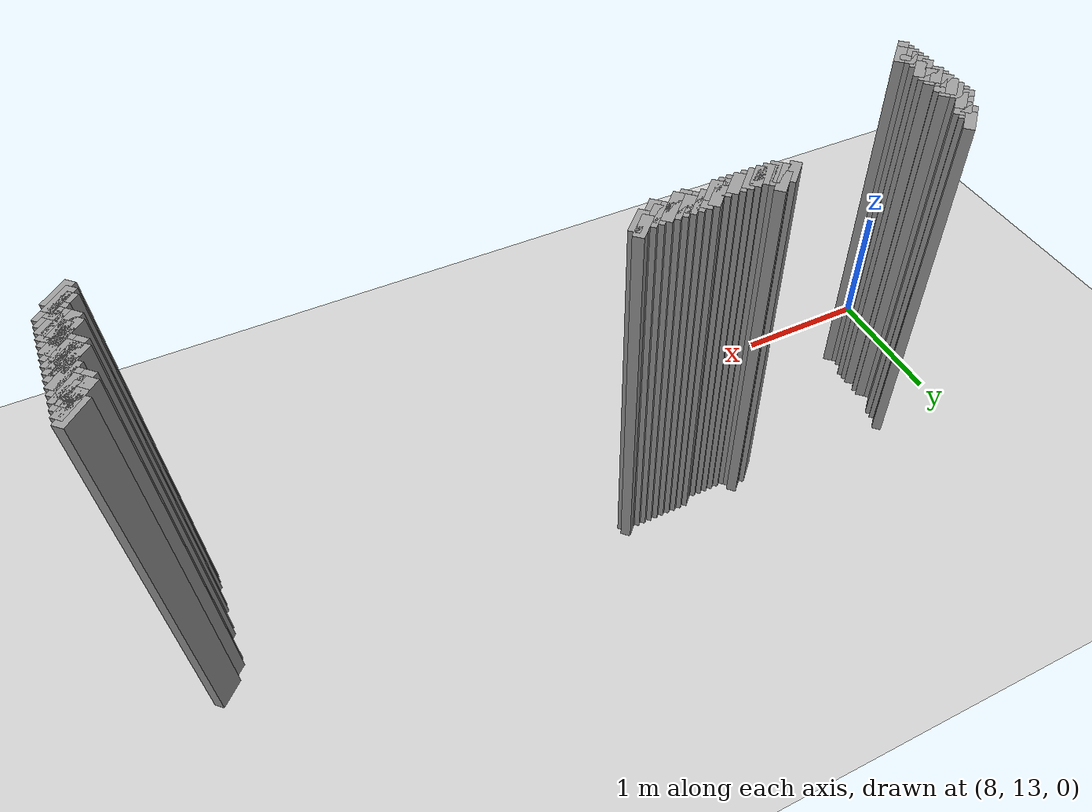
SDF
<sdf version="1.5">
 <world name="default">
  <include><uri>model://ground_plane</uri></include>
  <include><uri>model://sun</uri></include>
  <model name="grey_wall_701">
   <static>1</static>
   <link name="link">
    <pose>8.55 14.15  1.4 0 0 -0.785398163397</pose>
    <collision name="collision"><geometry><box><size>0.0707106781187 .2  2.8</size></box></geometry></collision>
    <visual name="visual">
     <cast_shadows>0</cast_shadows>
     <geometry><box><size>0.0707106781187 .2  2.8</size></box></geometry>
     <material>
      <script>
       <uri>model://grey_wall/materials/scripts</uri>
       <uri>model://grey_wall/materials/textures</uri>
       <name>vrc/grey_wall</name>
      </script>
     </material>
    </visual>
   </link>
  </model>
  <model name="grey_wall_702">
   <static>1</static>
   <link name="link">
    <pose>9.9 14.15  1.4 0 0 -0.785398163397</pose>
    <collision name="collision"><geometry><box><size>0.0707106781187 .2  2.8</size></box></geometry></collision>
    <visual name="visual">
     <cast_shadows>0</cast_shadows>
     <geometry><box><size>0.0707106781187 .2  2.8</size></box></geometry>
     <material>
      <script>
       <uri>model://grey_wall/materials/scripts</uri>
       <uri>model://grey_wall/materials/textures</uri>
       <name>vrc/grey_wall</name>
      </script>
     </material>
    </visual>
   </link>
  </model>
  <model name="grey_wall_703">
   <static>1</static>
   <link name="link">
    <pose>10.8 14.15  1.4 0 0 -0.785398163397</pose>
    <collision name="collision"><geometry><box><size>0.0707106781187 .2  2.8</size></box></geometry></collision>
    <visual name="visual">
     <cast_shadows>0</cast_shadows>
     <geometry><box><size>0.0707106781187 .2  2.8</size></box></geometry>
     <material>
      <script>
       <uri>model://grey_wall/materials/scripts</uri>
       <uri>model://grey_wall/materials/textures</uri>
       <name>vrc/grey_wall</name>
      </script>
     </material>
    </visual>
   </link>
  </model>
  <model name="grey_wall_704">
   <static>1</static>
   <link name="link">
    <pose>13.75 14.15  1.4 0 0 -0.785398163397</pose>
    <collision name="collision"><geometry><box><size>0.0707106781187 .2  2.8</size></box></geometry></collision>
    <visual name="visual">
     <cast_shadows>0</cast_shadows>
     <geometry><box><size>0.0707106781187 .2  2.8</size></box></geometry>
     <material>
      <script>
       <uri>model://grey_wall/materials/scripts</uri>
       <uri>model://grey_wall/materials/textures</uri>
       <name>vrc/grey_wall</name>
      </script>
     </material>
    </visual>
   </link>
  </model>
  <model name="grey_wall_705">
   <static>1</static>
   <link name="link">
    <pose>8.5 14.1  1.4 0 0 -0.785398163397</pose>
    <collision name="collision"><geometry><box><size>0.0707106781187 .2  2.8</size></box></geometry></collision>
    <visual name="visual">
     <cast_shadows>0</cast_shadows>
     <geometry><box><size>0.0707106781187 .2  2.8</size></box></geometry>
     <material>
      <script>
       <uri>model://grey_wall/materials/scripts</uri>
       <uri>model://grey_wall/materials/textures</uri>
       <name>vrc/grey_wall</name>
      </script>
     </material>
    </visual>
   </link>
  </model>
  <model name="grey_wall_706">
   <static>1</static>
   <link name="link">
    <pose>9.8 14.1  1.4 0 0 -0.785398163397</pose>
    <collision name="collision"><geometry><box><size>0.0707106781187 .2  2.8</size></box></geometry></collision>
    <visual name="visual">
     <cast_shadows>0</cast_shadows>
     <geometry><box><size>0.0707106781187 .2  2.8</size></box></geometry>
     <material>
      <script>
       <uri>model://grey_wall/materials/scripts</uri>
       <uri>model://grey_wall/materials/textures</uri>
       <name>vrc/grey_wall</name>
      </script>
     </material>
    </visual>
   </link>
  </model>
  <model name="grey_wall_707">
   <static>1</static>
   <link name="link">
    <pose>9.85 14.1  1.4 0 0 -0.785398163397</pose>
    <collision name="collision"><geometry><box><size>0.0707106781187 .2  2.8</size></box></geometry></collision>
    <visual name="visual">
     <cast_shadows>0</cast_shadows>
     <geometry><box><size>0.0707106781187 .2  2.8</size></box></geometry>
     <material>
      <script>
       <uri>model://grey_wall/materials/scripts</uri>
       <uri>model://grey_wall/materials/textures</uri>
       <name>vrc/grey_wall</name>
      </script>
     </material>
    </visual>
   </link>
  </model>
  <model name="grey_wall_708">
   <static>1</static>
   <link name="link">
    <pose>9.9 14.1  1.4 0 0 -0.785398163397</pose>
    <collision name="collision"><geometry><box><size>0.0707106781187 .2  2.8</size></box></geometry></collision>
    <visual name="visual">
     <cast_shadows>0</cast_shadows>
     <geometry><box><size>0.0707106781187 .2  2.8</size></box></geometry>
     <material>
      <script>
       <uri>model://grey_wall/materials/scripts</uri>
       <uri>model://grey_wall/materials/textures</uri>
       <name>vrc/grey_wall</name>
      </script>
     </material>
    </visual>
   </link>
  </model>
  <model name="grey_wall_709">
   <static>1</static>
   <link name="link">
    <pose>10.3 14.1  1.4 0 0 -0.785398163397</pose>
    <collision name="collision"><geometry><box><size>0.0707106781187 .2  2.8</size></box></geometry></collision>
    <visual name="visual">
     <cast_shadows>0</cast_shadows>
     <geometry><box><size>0.0707106781187 .2  2.8</size></box></geometry>
     <material>
      <script>
       <uri>model://grey_wall/materials/scripts</uri>
       <uri>model://grey_wall/materials/textures</uri>
       <name>vrc/grey_wall</name>
      </script>
     </material>
    </visual>
   </link>
  </model>
  <model name="grey_wall_710">
   <static>1</static>
   <link name="link">
    <pose>10.35 14.1  1.4 0 0 -0.785398163397</pose>
    <collision name="collision"><geometry><box><size>0.0707106781187 .2  2.8</size></box></geometry></collision>
    <visual name="visual">
     <cast_shadows>0</cast_shadows>
     <geometry><box><size>0.0707106781187 .2  2.8</size></box></geometry>
     <material>
      <script>
       <uri>model://grey_wall/materials/scripts</uri>
       <uri>model://grey_wall/materials/textures</uri>
       <name>vrc/grey_wall</name>
      </script>
     </material>
    </visual>
   </link>
  </model>
  <model name="grey_wall_711">
   <static>1</static>
   <link name="link">
    <pose>10.4 14.1  1.4 0 0 -0.785398163397</pose>
    <collision name="collision"><geometry><box><size>0.0707106781187 .2  2.8</size></box></geometry></collision>
    <visual name="visual">
     <cast_shadows>0</cast_shadows>
     <geometry><box><size>0.0707106781187 .2  2.8</size></box></geometry>
     <material>
      <script>
       <uri>model://grey_wall/materials/scripts</uri>
       <uri>model://grey_wall/materials/textures</uri>
       <name>vrc/grey_wall</name>
      </script>
     </material>
    </visual>
   </link>
  </model>
  <model name="grey_wall_712">
   <static>1</static>
   <link name="link">
    <pose>10.45 14.1  1.4 0 0 -0.785398163397</pose>
    <collision name="collision"><geometry><box><size>0.0707106781187 .2  2.8</size></box></geometry></collision>
    <visual name="visual">
     <cast_shadows>0</cast_shadows>
     <geometry><box><size>0.0707106781187 .2  2.8</size></box></geometry>
     <material>
      <script>
       <uri>model://grey_wall/materials/scripts</uri>
       <uri>model://grey_wall/materials/textures</uri>
       <name>vrc/grey_wall</name>
      </script>
     </material>
    </visual>
   </link>
  </model>
  <model name="grey_wall_713">
   <static>1</static>
   <link name="link">
    <pose>10.5 14.1  1.4 0 0 -0.785398163397</pose>
    <collision name="collision"><geometry><box><size>0.0707106781187 .2  2.8</size></box></geometry></collision>
    <visual name="visual">
     <cast_shadows>0</cast_shadows>
     <geometry><box><size>0.0707106781187 .2  2.8</size></box></geometry>
     <material>
      <script>
       <uri>model://grey_wall/materials/scripts</uri>
       <uri>model://grey_wall/materials/textures</uri>
       <name>vrc/grey_wall</name>
      </script>
     </material>
    </visual>
   </link>
  </model>
  <model name="grey_wall_714">
   <static>1</static>
   <link name="link">
    <pose>10.55 14.1  1.4 0 0 -0.785398163397</pose>
    <collision name="collision"><geometry><box><size>0.0707106781187 .2  2.8</size></box></geometry></collision>
    <visual name="visual">
     <cast_shadows>0</cast_shadows>
     <geometry><box><size>0.0707106781187 .2  2.8</size></box></geometry>
     <material>
      <script>
       <uri>model://grey_wall/materials/scripts</uri>
       <uri>model://grey_wall/materials/textures</uri>
       <name>vrc/grey_wall</name>
      </script>
     </material>
    </visual>
   </link>
  </model>
  <model name="grey_wall_715">
   <static>1</static>
   <link name="link">
    <pose>10.6 14.1  1.4 0 0 -0.785398163397</pose>
    <collision name="collision"><geometry><box><size>0.0707106781187 .2  2.8</size></box></geometry></collision>
    <visual name="visual">
     <cast_shadows>0</cast_shadows>
     <geometry><box><size>0.0707106781187 .2  2.8</size></box></geometry>
     <material>
      <script>
       <uri>model://grey_wall/materials/scripts</uri>
       <uri>model://grey_wall/materials/textures</uri>
       <name>vrc/grey_wall</name>
      </script>
     </material>
    </visual>
   </link>
  </model>
  <model name="grey_wall_716">
   <static>1</static>
   <link name="link">
    <pose>10.65 14.1  1.4 0 0 -0.785398163397</pose>
    <collision name="collision"><geometry><box><size>0.0707106781187 .2  2.8</size></box></geometry></collision>
    <visual name="visual">
     <cast_shadows>0</cast_shadows>
     <geometry><box><size>0.0707106781187 .2  2.8</size></box></geometry>
     <material>
      <script>
       <uri>model://grey_wall/materials/scripts</uri>
       <uri>model://grey_wall/materials/textures</uri>
       <name>vrc/grey_wall</name>
      </script>
     </material>
    </visual>
   </link>
  </model>
  <model name="grey_wall_717">
   <static>1</static>
   <link name="link">
    <pose>10.7 14.1  1.4 0 0 -0.785398163397</pose>
    <collision name="collision"><geometry><box><size>0.0707106781187 .2  2.8</size></box></geometry></collision>
    <visual name="visual">
     <cast_shadows>0</cast_shadows>
     <geometry><box><size>0.0707106781187 .2  2.8</size></box></geometry>
     <material>
      <script>
       <uri>model://grey_wall/materials/scripts</uri>
       <uri>model://grey_wall/materials/textures</uri>
       <name>vrc/grey_wall</name>
      </script>
     </material>
    </visual>
   </link>
  </model>
  <model name="grey_wall_718">
   <static>1</static>
   <link name="link">
    <pose>10.75 14.1  1.4 0 0 -0.785398163397</pose>
    <collision name="collision"><geometry><box><size>0.0707106781187 .2  2.8</size></box></geometry></collision>
    <visual name="visual">
     <cast_shadows>0</cast_shadows>
     <geometry><box><size>0.0707106781187 .2  2.8</size></box></geometry>
     <material>
      <script>
       <uri>model://grey_wall/materials/scripts</uri>
       <uri>model://grey_wall/materials/textures</uri>
       <name>vrc/grey_wall</name>
      </script>
     </material>
    </visual>
   </link>
  </model>
  <model name="grey_wall_719">
   <static>1</static>
   <link name="link">
    <pose>10.8 14.1  1.4 0 0 -0.785398163397</pose>
    <collision name="collision"><geometry><box><size>0.0707106781187 .2  2.8</size></box></geometry></collision>
    <visual name="visual">
     <cast_shadows>0</cast_shadows>
     <geometry><box><size>0.0707106781187 .2  2.8</size></box></geometry>
     <material>
      <script>
       <uri>model://grey_wall/materials/scripts</uri>
       <uri>model://grey_wall/materials/textures</uri>
       <name>vrc/grey_wall</name>
      </script>
     </material>
    </visual>
   </link>
  </model>
  <model name="grey_wall_720">
   <static>1</static>
   <link name="link">
    <pose>13.75 14.1  1.4 0 0 -0.785398163397</pose>
    <collision name="collision"><geometry><box><size>0.0707106781187 .2  2.8</size></box></geometry></collision>
    <visual name="visual">
     <cast_shadows>0</cast_shadows>
     <geometry><box><size>0.0707106781187 .2  2.8</size></box></geometry>
     <material>
      <script>
       <uri>model://grey_wall/materials/scripts</uri>
       <uri>model://grey_wall/materials/textures</uri>
       <name>vrc/grey_wall</name>
      </script>
     </material>
    </visual>
   </link>
  </model>
  <model name="grey_wall_721">
   <static>1</static>
   <link name="link">
    <pose>8.5 14.05  1.4 0 0 -0.785398163397</pose>
    <collision name="collision"><geometry><box><size>0.0707106781187 .2  2.8</size></box></geometry></collision>
    <visual name="visual">
     <cast_shadows>0</cast_shadows>
     <geometry><box><size>0.0707106781187 .2  2.8</size></box></geometry>
     <material>
      <script>
       <uri>model://grey_wall/materials/scripts</uri>
       <uri>model://grey_wall/materials/textures</uri>
       <name>vrc/grey_wall</name>
      </script>
     </material>
    </visual>
   </link>
  </model>
  <model name="grey_wall_722">
   <static>1</static>
   <link name="link">
    <pose>9.9 14.05  1.4 0 0 -0.785398163397</pose>
    <collision name="collision"><geometry><box><size>0.0707106781187 .2  2.8</size></box></geometry></collision>
    <visual name="visual">
     <cast_shadows>0</cast_shadows>
     <geometry><box><size>0.0707106781187 .2  2.8</size></box></geometry>
     <material>
      <script>
       <uri>model://grey_wall/materials/scripts</uri>
       <uri>model://grey_wall/materials/textures</uri>
       <name>vrc/grey_wall</name>
      </script>
     </material>
    </visual>
   </link>
  </model>
  <model name="grey_wall_723">
   <static>1</static>
   <link name="link">
    <pose>9.95 14.05  1.4 0 0 -0.785398163397</pose>
    <collision name="collision"><geometry><box><size>0.0707106781187 .2  2.8</size></box></geometry></collision>
    <visual name="visual">
     <cast_shadows>0</cast_shadows>
     <geometry><box><size>0.0707106781187 .2  2.8</size></box></geometry>
     <material>
      <script>
       <uri>model://grey_wall/materials/scripts</uri>
       <uri>model://grey_wall/materials/textures</uri>
       <name>vrc/grey_wall</name>
      </script>
     </material>
    </visual>
   </link>
  </model>
  <model name="grey_wall_724">
   <static>1</static>
   <link name="link">
    <pose>10.0 14.05  1.4 0 0 -0.785398163397</pose>
    <collision name="collision"><geometry><box><size>0.0707106781187 .2  2.8</size></box></geometry></collision>
    <visual name="visual">
     <cast_shadows>0</cast_shadows>
     <geometry><box><size>0.0707106781187 .2  2.8</size></box></geometry>
     <material>
      <script>
       <uri>model://grey_wall/materials/scripts</uri>
       <uri>model://grey_wall/materials/textures</uri>
       <name>vrc/grey_wall</name>
      </script>
     </material>
    </visual>
   </link>
  </model>
  <model name="grey_wall_725">
   <static>1</static>
   <link name="link">
    <pose>10.05 14.05  1.4 0 0 -0.785398163397</pose>
    <collision name="collision"><geometry><box><size>0.0707106781187 .2  2.8</size></box></geometry></collision>
    <visual name="visual">
     <cast_shadows>0</cast_shadows>
     <geometry><box><size>0.0707106781187 .2  2.8</size></box></geometry>
     <material>
      <script>
       <uri>model://grey_wall/materials/scripts</uri>
       <uri>model://grey_wall/materials/textures</uri>
       <name>vrc/grey_wall</name>
      </script>
     </material>
    </visual>
   </link>
  </model>
  <model name="grey_wall_726">
   <static>1</static>
   <link name="link">
    <pose>10.1 14.05  1.4 0 0 -0.785398163397</pose>
    <collision name="collision"><geometry><box><size>0.0707106781187 .2  2.8</size></box></geometry></collision>
    <visual name="visual">
     <cast_shadows>0</cast_shadows>
     <geometry><box><size>0.0707106781187 .2  2.8</size></box></geometry>
     <material>
      <script>
       <uri>model://grey_wall/materials/scripts</uri>
       <uri>model://grey_wall/materials/textures</uri>
       <name>vrc/grey_wall</name>
      </script>
     </material>
    </visual>
   </link>
  </model>
  <model name="grey_wall_727">
   <static>1</static>
   <link name="link">
    <pose>10.15 14.05  1.4 0 0 -0.785398163397</pose>
    <collision name="collision"><geometry><box><size>0.0707106781187 .2  2.8</size></box></geometry></collision>
    <visual name="visual">
     <cast_shadows>0</cast_shadows>
     <geometry><box><size>0.0707106781187 .2  2.8</size></box></geometry>
     <material>
      <script>
       <uri>model://grey_wall/materials/scripts</uri>
       <uri>model://grey_wall/materials/textures</uri>
       <name>vrc/grey_wall</name>
      </script>
     </material>
    </visual>
   </link>
  </model>
  <model name="grey_wall_728">
   <static>1</static>
   <link name="link">
    <pose>10.2 14.05  1.4 0 0 -0.785398163397</pose>
    <collision name="collision"><geometry><box><size>0.0707106781187 .2  2.8</size></box></geometry></collision>
    <visual name="visual">
     <cast_shadows>0</cast_shadows>
     <geometry><box><size>0.0707106781187 .2  2.8</size></box></geometry>
     <material>
      <script>
       <uri>model://grey_wall/materials/scripts</uri>
       <uri>model://grey_wall/materials/textures</uri>
       <name>vrc/grey_wall</name>
      </script>
     </material>
    </visual>
   </link>
  </model>
  <model name="grey_wall_729">
   <static>1</static>
   <link name="link">
    <pose>10.25 14.05  1.4 0 0 -0.785398163397</pose>
    <collision name="collision"><geometry><box><size>0.0707106781187 .2  2.8</size></box></geometry></collision>
    <visual name="visual">
     <cast_shadows>0</cast_shadows>
     <geometry><box><size>0.0707106781187 .2  2.8</size></box></geometry>
     <material>
      <script>
       <uri>model://grey_wall/materials/scripts</uri>
       <uri>model://grey_wall/materials/textures</uri>
       <name>vrc/grey_wall</name>
      </script>
     </material>
    </visual>
   </link>
  </model>
  <model name="grey_wall_730">
   <static>1</static>
   <link name="link">
    <pose>10.3 14.05  1.4 0 0 -0.785398163397</pose>
    <collision name="collision"><geometry><box><size>0.0707106781187 .2  2.8</size></box></geometry></collision>
    <visual name="visual">
     <cast_shadows>0</cast_shadows>
     <geometry><box><size>0.0707106781187 .2  2.8</size></box></geometry>
     <material>
      <script>
       <uri>model://grey_wall/materials/scripts</uri>
       <uri>model://grey_wall/materials/textures</uri>
       <name>vrc/grey_wall</name>
      </script>
     </material>
    </visual>
   </link>
  </model>
  <model name="grey_wall_731">
   <static>1</static>
   <link name="link">
    <pose>10.5 14.05  1.4 0 0 -0.785398163397</pose>
    <collision name="collision"><geometry><box><size>0.0707106781187 .2  2.8</size></box></geometry></collision>
    <visual name="visual">
     <cast_shadows>0</cast_shadows>
     <geometry><box><size>0.0707106781187 .2  2.8</size></box></geometry>
     <material>
      <script>
       <uri>model://grey_wall/materials/scripts</uri>
       <uri>model://grey_wall/materials/textures</uri>
       <name>vrc/grey_wall</name>
      </script>
     </material>
    </visual>
   </link>
  </model>
  <model name="grey_wall_732">
   <static>1</static>
   <link name="link">
    <pose>10.55 14.05  1.4 0 0 -0.785398163397</pose>
    <collision name="collision"><geometry><box><size>0.0707106781187 .2  2.8</size></box></geometry></collision>
    <visual name="visual">
     <cast_shadows>0</cast_shadows>
     <geometry><box><size>0.0707106781187 .2  2.8</size></box></geometry>
     <material>
      <script>
       <uri>model://grey_wall/materials/scripts</uri>
       <uri>model://grey_wall/materials/textures</uri>
       <name>vrc/grey_wall</name>
      </script>
     </material>
    </visual>
   </link>
  </model>
  <model name="grey_wall_733">
   <static>1</static>
   <link name="link">
    <pose>10.7 14.05  1.4 0 0 -0.785398163397</pose>
    <collision name="collision"><geometry><box><size>0.0707106781187 .2  2.8</size></box></geometry></collision>
    <visual name="visual">
     <cast_shadows>0</cast_shadows>
     <geometry><box><size>0.0707106781187 .2  2.8</size></box></geometry>
     <material>
      <script>
       <uri>model://grey_wall/materials/scripts</uri>
       <uri>model://grey_wall/materials/textures</uri>
       <name>vrc/grey_wall</name>
      </script>
     </material>
    </visual>
   </link>
  </model>
  <model name="grey_wall_734">
   <static>1</static>
   <link name="link">
    <pose>13.7 14.05  1.4 0 0 -0.785398163397</pose>
    <collision name="collision"><geometry><box><size>0.0707106781187 .2  2.8</size></box></geometry></collision>
    <visual name="visual">
     <cast_shadows>0</cast_shadows>
     <geometry><box><size>0.0707106781187 .2  2.8</size></box></geometry>
     <material>
      <script>
       <uri>model://grey_wall/materials/scripts</uri>
       <uri>model://grey_wall/materials/textures</uri>
       <name>vrc/grey_wall</name>
      </script>
     </material>
    </visual>
   </link>
  </model>
  <model name="grey_wall_735">
   <static>1</static>
   <link name="link">
    <pose>13.75 14.05  1.4 0 0 -0.785398163397</pose>
    <collision name="collision"><geometry><box><size>0.0707106781187 .2  2.8</size></box></geometry></collision>
    <visual name="visual">
     <cast_shadows>0</cast_shadows>
     <geometry><box><size>0.0707106781187 .2  2.8</size></box></geometry>
     <material>
      <script>
       <uri>model://grey_wall/materials/scripts</uri>
       <uri>model://grey_wall/materials/textures</uri>
       <name>vrc/grey_wall</name>
      </script>
     </material>
    </visual>
   </link>
  </model>
  <model name="grey_wall_736">
   <static>1</static>
   <link name="link">
    <pose>8.45 14.0  1.4 0 0 -0.785398163397</pose>
    <collision name="collision"><geometry><box><size>0.0707106781187 .2  2.8</size></box></geometry></collision>
    <visual name="visual">
     <cast_shadows>0</cast_shadows>
     <geometry><box><size>0.0707106781187 .2  2.8</size></box></geometry>
     <material>
      <script>
       <uri>model://grey_wall/materials/scripts</uri>
       <uri>model://grey_wall/materials/textures</uri>
       <name>vrc/grey_wall</name>
      </script>
     </material>
    </visual>
   </link>
  </model>
  <model name="grey_wall_737">
   <static>1</static>
   <link name="link">
    <pose>8.5 14.0  1.4 0 0 -0.785398163397</pose>
    <collision name="collision"><geometry><box><size>0.0707106781187 .2  2.8</size></box></geometry></collision>
    <visual name="visual">
     <cast_shadows>0</cast_shadows>
     <geometry><box><size>0.0707106781187 .2  2.8</size></box></geometry>
     <material>
      <script>
       <uri>model://grey_wall/materials/scripts</uri>
       <uri>model://grey_wall/materials/textures</uri>
       <name>vrc/grey_wall</name>
      </script>
     </material>
    </visual>
   </link>
  </model>
  <model name="grey_wall_738">
   <static>1</static>
   <link name="link">
    <pose>13.7 14.0  1.4 0 0 -0.785398163397</pose>
    <collision name="collision"><geometry><box><size>0.0707106781187 .2  2.8</size></box></geometry></collision>
    <visual name="visual">
     <cast_shadows>0</cast_shadows>
     <geometry><box><size>0.0707106781187 .2  2.8</size></box></geometry>
     <material>
      <script>
       <uri>model://grey_wall/materials/scripts</uri>
       <uri>model://grey_wall/materials/textures</uri>
       <name>vrc/grey_wall</name>
      </script>
     </material>
    </visual>
   </link>
  </model>
  <model name="grey_wall_739">
   <static>1</static>
   <link name="link">
    <pose>13.75 14.0  1.4 0 0 -0.785398163397</pose>
    <collision name="collision"><geometry><box><size>0.0707106781187 .2  2.8</size></box></geometry></collision>
    <visual name="visual">
     <cast_shadows>0</cast_shadows>
     <geometry><box><size>0.0707106781187 .2  2.8</size></box></geometry>
     <material>
      <script>
       <uri>model://grey_wall/materials/scripts</uri>
       <uri>model://grey_wall/materials/textures</uri>
       <name>vrc/grey_wall</name>
      </script>
     </material>
    </visual>
   </link>
  </model>
  <model name="grey_wall_740">
   <static>1</static>
   <link name="link">
    <pose>8.4 13.95  1.4 0 0 -0.785398163397</pose>
    <collision name="collision"><geometry><box><size>0.0707106781187 .2  2.8</size></box></geometry></collision>
    <visual name="visual">
     <cast_shadows>0</cast_shadows>
     <geometry><box><size>0.0707106781187 .2  2.8</size></box></geometry>
     <material>
      <script>
       <uri>model://grey_wall/materials/scripts</uri>
       <uri>model://grey_wall/materials/textures</uri>
       <name>vrc/grey_wall</name>
      </script>
     </material>
    </visual>
   </link>
  </model>
  <model name="grey_wall_741">
   <static>1</static>
   <link name="link">
    <pose>8.45 13.95  1.4 0 0 -0.785398163397</pose>
    <collision name="collision"><geometry><box><size>0.0707106781187 .2  2.8</size></box></geometry></collision>
    <visual name="visual">
     <cast_shadows>0</cast_shadows>
     <geometry><box><size>0.0707106781187 .2  2.8</size></box></geometry>
     <material>
      <script>
       <uri>model://grey_wall/materials/scripts</uri>
       <uri>model://grey_wall/materials/textures</uri>
       <name>vrc/grey_wall</name>
      </script>
     </material>
    </visual>
   </link>
  </model>
  <model name="grey_wall_742">
   <static>1</static>
   <link name="link">
    <pose>13.75 13.95  1.4 0 0 -0.785398163397</pose>
    <collision name="collision"><geometry><box><size>0.0707106781187 .2  2.8</size></box></geometry></collision>
    <visual name="visual">
     <cast_shadows>0</cast_shadows>
     <geometry><box><size>0.0707106781187 .2  2.8</size></box></geometry>
     <material>
      <script>
       <uri>model://grey_wall/materials/scripts</uri>
       <uri>model://grey_wall/materials/textures</uri>
       <name>vrc/grey_wall</name>
      </script>
     </material>
    </visual>
   </link>
  </model>
  <model name="grey_wall_743">
   <static>1</static>
   <link name="link">
    <pose>8.4 13.9  1.4 0 0 -0.785398163397</pose>
    <collision name="collision"><geometry><box><size>0.0707106781187 .2  2.8</size></box></geometry></collision>
    <visual name="visual">
     <cast_shadows>0</cast_shadows>
     <geometry><box><size>0.0707106781187 .2  2.8</size></box></geometry>
     <material>
      <script>
       <uri>model://grey_wall/materials/scripts</uri>
       <uri>model://grey_wall/materials/textures</uri>
       <name>vrc/grey_wall</name>
      </script>
     </material>
    </visual>
   </link>
  </model>
  <model name="grey_wall_744">
   <static>1</static>
   <link name="link">
    <pose>13.75 13.9  1.4 0 0 -0.785398163397</pose>
    <collision name="collision"><geometry><box><size>0.0707106781187 .2  2.8</size></box></geometry></collision>
    <visual name="visual">
     <cast_shadows>0</cast_shadows>
     <geometry><box><size>0.0707106781187 .2  2.8</size></box></geometry>
     <material>
      <script>
       <uri>model://grey_wall/materials/scripts</uri>
       <uri>model://grey_wall/materials/textures</uri>
       <name>vrc/grey_wall</name>
      </script>
     </material>
    </visual>
   </link>
  </model>
  <model name="grey_wall_745">
   <static>1</static>
   <link name="link">
    <pose>8.4 13.85  1.4 0 0 -0.785398163397</pose>
    <collision name="collision"><geometry><box><size>0.0707106781187 .2  2.8</size></box></geometry></collision>
    <visual name="visual">
     <cast_shadows>0</cast_shadows>
     <geometry><box><size>0.0707106781187 .2  2.8</size></box></geometry>
     <material>
      <script>
       <uri>model://grey_wall/materials/scripts</uri>
       <uri>model://grey_wall/materials/textures</uri>
       <name>vrc/grey_wall</name>
      </script>
     </material>
    </visual>
   </link>
  </model>
  <model name="grey_wall_746">
   <static>1</static>
   <link name="link">
    <pose>13.75 13.85  1.4 0 0 -0.785398163397</pose>
    <collision name="collision"><geometry><box><size>0.0707106781187 .2  2.8</size></box></geometry></collision>
    <visual name="visual">
     <cast_shadows>0</cast_shadows>
     <geometry><box><size>0.0707106781187 .2  2.8</size></box></geometry>
     <material>
      <script>
       <uri>model://grey_wall/materials/scripts</uri>
       <uri>model://grey_wall/materials/textures</uri>
       <name>vrc/grey_wall</name>
      </script>
     </material>
    </visual>
   </link>
  </model>
  <model name="grey_wall_747">
   <static>1</static>
   <link name="link">
    <pose>8.4 13.8  1.4 0 0 -0.785398163397</pose>
    <collision name="collision"><geometry><box><size>0.0707106781187 .2  2.8</size></box></geometry></collision>
    <visual name="visual">
     <cast_shadows>0</cast_shadows>
     <geometry><box><size>0.0707106781187 .2  2.8</size></box></geometry>
     <material>
      <script>
       <uri>model://grey_wall/materials/scripts</uri>
       <uri>model://grey_wall/materials/textures</uri>
       <name>vrc/grey_wall</name>
      </script>
     </material>
    </visual>
   </link>
  </model>
  <model name="grey_wall_748">
   <static>1</static>
   <link name="link">
    <pose>8.45 13.8  1.4 0 0 -0.785398163397</pose>
    <collision name="collision"><geometry><box><size>0.0707106781187 .2  2.8</size></box></geometry></collision>
    <visual name="visual">
     <cast_shadows>0</cast_shadows>
     <geometry><box><size>0.0707106781187 .2  2.8</size></box></geometry>
     <material>
      <script>
       <uri>model://grey_wall/materials/scripts</uri>
       <uri>model://grey_wall/materials/textures</uri>
       <name>vrc/grey_wall</name>
      </script>
     </material>
    </visual>
   </link>
  </model>
  <model name="grey_wall_749">
   <static>1</static>
   <link name="link">
    <pose>13.7 13.8  1.4 0 0 -0.785398163397</pose>
    <collision name="collision"><geometry><box><size>0.0707106781187 .2  2.8</size></box></geometry></collision>
    <visual name="visual">
     <cast_shadows>0</cast_shadows>
     <geometry><box><size>0.0707106781187 .2  2.8</size></box></geometry>
     <material>
      <script>
       <uri>model://grey_wall/materials/scripts</uri>
       <uri>model://grey_wall/materials/textures</uri>
       <name>vrc/grey_wall</name>
      </script>
     </material>
    </visual>
   </link>
  </model>
  <model name="grey_wall_750">
   <static>1</static>
   <link name="link">
    <pose>13.75 13.8  1.4 0 0 -0.785398163397</pose>
    <collision name="collision"><geometry><box><size>0.0707106781187 .2  2.8</size></box></geometry></collision>
    <visual name="visual">
     <cast_shadows>0</cast_shadows>
     <geometry><box><size>0.0707106781187 .2  2.8</size></box></geometry>
     <material>
      <script>
       <uri>model://grey_wall/materials/scripts</uri>
       <uri>model://grey_wall/materials/textures</uri>
       <name>vrc/grey_wall</name>
      </script>
     </material>
    </visual>
   </link>
  </model>
  <model name="grey_wall_751">
   <static>1</static>
   <link name="link">
    <pose>8.4 13.75  1.4 0 0 -0.785398163397</pose>
    <collision name="collision"><geometry><box><size>0.0707106781187 .2  2.8</size></box></geometry></collision>
    <visual name="visual">
     <cast_shadows>0</cast_shadows>
     <geometry><box><size>0.0707106781187 .2  2.8</size></box></geometry>
     <material>
      <script>
       <uri>model://grey_wall/materials/scripts</uri>
       <uri>model://grey_wall/materials/textures</uri>
       <name>vrc/grey_wall</name>
      </script>
     </material>
    </visual>
   </link>
  </model>
  <model name="grey_wall_752">
   <static>1</static>
   <link name="link">
    <pose>8.45 13.75  1.4 0 0 -0.785398163397</pose>
    <collision name="collision"><geometry><box><size>0.0707106781187 .2  2.8</size></box></geometry></collision>
    <visual name="visual">
     <cast_shadows>0</cast_shadows>
     <geometry><box><size>0.0707106781187 .2  2.8</size></box></geometry>
     <material>
      <script>
       <uri>model://grey_wall/materials/scripts</uri>
       <uri>model://grey_wall/materials/textures</uri>
       <name>vrc/grey_wall</name>
      </script>
     </material>
    </visual>
   </link>
  </model>
  <model name="grey_wall_753">
   <static>1</static>
   <link name="link">
    <pose>13.7 13.75  1.4 0 0 -0.785398163397</pose>
    <collision name="collision"><geometry><box><size>0.0707106781187 .2  2.8</size></box></geometry></collision>
    <visual name="visual">
     <cast_shadows>0</cast_shadows>
     <geometry><box><size>0.0707106781187 .2  2.8</size></box></geometry>
     <material>
      <script>
       <uri>model://grey_wall/materials/scripts</uri>
       <uri>model://grey_wall/materials/textures</uri>
       <name>vrc/grey_wall</name>
      </script>
     </material>
    </visual>
   </link>
  </model>
  <model name="grey_wall_754">
   <static>1</static>
   <link name="link">
    <pose>13.75 13.75  1.4 0 0 -0.785398163397</pose>
    <collision name="collision"><geometry><box><size>0.0707106781187 .2  2.8</size></box></geometry></collision>
    <visual name="visual">
     <cast_shadows>0</cast_shadows>
     <geometry><box><size>0.0707106781187 .2  2.8</size></box></geometry>
     <material>
      <script>
       <uri>model://grey_wall/materials/scripts</uri>
       <uri>model://grey_wall/materials/textures</uri>
       <name>vrc/grey_wall</name>
      </script>
     </material>
    </visual>
   </link>
  </model>
  <model name="grey_wall_755">
   <static>1</static>
   <link name="link">
    <pose>8.4 13.7  1.4 0 0 -0.785398163397</pose>
    <collision name="collision"><geometry><box><size>0.0707106781187 .2  2.8</size></box></geometry></collision>
    <visual name="visual">
     <cast_shadows>0</cast_shadows>
     <geometry><box><size>0.0707106781187 .2  2.8</size></box></geometry>
     <material>
      <script>
       <uri>model://grey_wall/materials/scripts</uri>
       <uri>model://grey_wall/materials/textures</uri>
       <name>vrc/grey_wall</name>
      </script>
     </material>
    </visual>
   </link>
  </model>
  <model name="grey_wall_756">
   <static>1</static>
   <link name="link">
    <pose>13.75 13.7  1.4 0 0 -0.785398163397</pose>
    <collision name="collision"><geometry><box><size>0.0707106781187 .2  2.8</size></box></geometry></collision>
    <visual name="visual">
     <cast_shadows>0</cast_shadows>
     <geometry><box><size>0.0707106781187 .2  2.8</size></box></geometry>
     <material>
      <script>
       <uri>model://grey_wall/materials/scripts</uri>
       <uri>model://grey_wall/materials/textures</uri>
       <name>vrc/grey_wall</name>
      </script>
     </material>
    </visual>
   </link>
  </model>
  <model name="grey_wall_757">
   <static>1</static>
   <link name="link">
    <pose>8.4 13.65  1.4 0 0 -0.785398163397</pose>
    <collision name="collision"><geometry><box><size>0.0707106781187 .2  2.8</size></box></geometry></collision>
    <visual name="visual">
     <cast_shadows>0</cast_shadows>
     <geometry><box><size>0.0707106781187 .2  2.8</size></box></geometry>
     <material>
      <script>
       <uri>model://grey_wall/materials/scripts</uri>
       <uri>model://grey_wall/materials/textures</uri>
       <name>vrc/grey_wall</name>
      </script>
     </material>
    </visual>
   </link>
  </model>
  <model name="grey_wall_758">
   <static>1</static>
   <link name="link">
    <pose>8.45 13.65  1.4 0 0 -0.785398163397</pose>
    <collision name="collision"><geometry><box><size>0.0707106781187 .2  2.8</size></box></geometry></collision>
    <visual name="visual">
     <cast_shadows>0</cast_shadows>
     <geometry><box><size>0.0707106781187 .2  2.8</size></box></geometry>
     <material>
      <script>
       <uri>model://grey_wall/materials/scripts</uri>
       <uri>model://grey_wall/materials/textures</uri>
       <name>vrc/grey_wall</name>
      </script>
     </material>
    </visual>
   </link>
  </model>
  <model name="grey_wall_759">
   <static>1</static>
   <link name="link">
    <pose>13.75 13.65  1.4 0 0 -0.785398163397</pose>
    <collision name="collision"><geometry><box><size>0.0707106781187 .2  2.8</size></box></geometry></collision>
    <visual name="visual">
     <cast_shadows>0</cast_shadows>
     <geometry><box><size>0.0707106781187 .2  2.8</size></box></geometry>
     <material>
      <script>
       <uri>model://grey_wall/materials/scripts</uri>
       <uri>model://grey_wall/materials/textures</uri>
       <name>vrc/grey_wall</name>
      </script>
     </material>
    </visual>
   </link>
  </model>
  <model name="grey_wall_760">
   <static>1</static>
   <link name="link">
    <pose>8.45 13.6  1.4 0 0 -0.785398163397</pose>
    <collision name="collision"><geometry><box><size>0.0707106781187 .2  2.8</size></box></geometry></collision>
    <visual name="visual">
     <cast_shadows>0</cast_shadows>
     <geometry><box><size>0.0707106781187 .2  2.8</size></box></geometry>
     <material>
      <script>
       <uri>model://grey_wall/materials/scripts</uri>
       <uri>model://grey_wall/materials/textures</uri>
       <name>vrc/grey_wall</name>
      </script>
     </material>
    </visual>
   </link>
  </model>
  <model name="grey_wall_761">
   <static>1</static>
   <link name="link">
    <pose>13.7 13.6  1.4 0 0 -0.785398163397</pose>
    <collision name="collision"><geometry><box><size>0.0707106781187 .2  2.8</size></box></geometry></collision>
    <visual name="visual">
     <cast_shadows>0</cast_shadows>
     <geometry><box><size>0.0707106781187 .2  2.8</size></box></geometry>
     <material>
      <script>
       <uri>model://grey_wall/materials/scripts</uri>
       <uri>model://grey_wall/materials/textures</uri>
       <name>vrc/grey_wall</name>
      </script>
     </material>
    </visual>
   </link>
  </model>
  <model name="grey_wall_762">
   <static>1</static>
   <link name="link">
    <pose>13.75 13.6  1.4 0 0 -0.785398163397</pose>
    <collision name="collision"><geometry><box><size>0.0707106781187 .2  2.8</size></box></geometry></collision>
    <visual name="visual">
     <cast_shadows>0</cast_shadows>
     <geometry><box><size>0.0707106781187 .2  2.8</size></box></geometry>
     <material>
      <script>
       <uri>model://grey_wall/materials/scripts</uri>
       <uri>model://grey_wall/materials/textures</uri>
       <name>vrc/grey_wall</name>
      </script>
     </material>
    </visual>
   </link>
  </model>
  <model name="grey_wall_763">
   <static>1</static>
   <link name="link">
    <pose>8.4 13.55  1.4 0 0 -0.785398163397</pose>
    <collision name="collision"><geometry><box><size>0.0707106781187 .2  2.8</size></box></geometry></collision>
    <visual name="visual">
     <cast_shadows>0</cast_shadows>
     <geometry><box><size>0.0707106781187 .2  2.8</size></box></geometry>
     <material>
      <script>
       <uri>model://grey_wall/materials/scripts</uri>
       <uri>model://grey_wall/materials/textures</uri>
       <name>vrc/grey_wall</name>
      </script>
     </material>
    </visual>
   </link>
  </model>
  <model name="grey_wall_764">
   <static>1</static>
   <link name="link">
    <pose>8.45 13.55  1.4 0 0 -0.785398163397</pose>
    <collision name="collision"><geometry><box><size>0.0707106781187 .2  2.8</size></box></geometry></collision>
    <visual name="visual">
     <cast_shadows>0</cast_shadows>
     <geometry><box><size>0.0707106781187 .2  2.8</size></box></geometry>
     <material>
      <script>
       <uri>model://grey_wall/materials/scripts</uri>
       <uri>model://grey_wall/materials/textures</uri>
       <name>vrc/grey_wall</name>
      </script>
     </material>
    </visual>
   </link>
  </model>
  <model name="grey_wall_765">
   <static>1</static>
   <link name="link">
    <pose>13.7 13.55  1.4 0 0 -0.785398163397</pose>
    <collision name="collision"><geometry><box><size>0.0707106781187 .2  2.8</size></box></geometry></collision>
    <visual name="visual">
     <cast_shadows>0</cast_shadows>
     <geometry><box><size>0.0707106781187 .2  2.8</size></box></geometry>
     <material>
      <script>
       <uri>model://grey_wall/materials/scripts</uri>
       <uri>model://grey_wall/materials/textures</uri>
       <name>vrc/grey_wall</name>
      </script>
     </material>
    </visual>
   </link>
  </model>
  <model name="grey_wall_766">
   <static>1</static>
   <link name="link">
    <pose>13.75 13.55  1.4 0 0 -0.785398163397</pose>
    <collision name="collision"><geometry><box><size>0.0707106781187 .2  2.8</size></box></geometry></collision>
    <visual name="visual">
     <cast_shadows>0</cast_shadows>
     <geometry><box><size>0.0707106781187 .2  2.8</size></box></geometry>
     <material>
      <script>
       <uri>model://grey_wall/materials/scripts</uri>
       <uri>model://grey_wall/materials/textures</uri>
       <name>vrc/grey_wall</name>
      </script>
     </material>
    </visual>
   </link>
  </model>
  <model name="grey_wall_767">
   <static>1</static>
   <link name="link">
    <pose>8.4 13.5  1.4 0 0 -0.785398163397</pose>
    <collision name="collision"><geometry><box><size>0.0707106781187 .2  2.8</size></box></geometry></collision>
    <visual name="visual">
     <cast_shadows>0</cast_shadows>
     <geometry><box><size>0.0707106781187 .2  2.8</size></box></geometry>
     <material>
      <script>
       <uri>model://grey_wall/materials/scripts</uri>
       <uri>model://grey_wall/materials/textures</uri>
       <name>vrc/grey_wall</name>
      </script>
     </material>
    </visual>
   </link>
  </model>
  <model name="grey_wall_768">
   <static>1</static>
   <link name="link">
    <pose>13.75 13.5  1.4 0 0 -0.785398163397</pose>
    <collision name="collision"><geometry><box><size>0.0707106781187 .2  2.8</size></box></geometry></collision>
    <visual name="visual">
     <cast_shadows>0</cast_shadows>
     <geometry><box><size>0.0707106781187 .2  2.8</size></box></geometry>
     <material>
      <script>
       <uri>model://grey_wall/materials/scripts</uri>
       <uri>model://grey_wall/materials/textures</uri>
       <name>vrc/grey_wall</name>
      </script>
     </material>
    </visual>
   </link>
  </model>
  <model name="grey_wall_769">
   <static>1</static>
   <link name="link">
    <pose>8.4 13.45  1.4 0 0 -0.785398163397</pose>
    <collision name="collision"><geometry><box><size>0.0707106781187 .2  2.8</size></box></geometry></collision>
    <visual name="visual">
     <cast_shadows>0</cast_shadows>
     <geometry><box><size>0.0707106781187 .2  2.8</size></box></geometry>
     <material>
      <script>
       <uri>model://grey_wall/materials/scripts</uri>
       <uri>model://grey_wall/materials/textures</uri>
       <name>vrc/grey_wall</name>
      </script>
     </material>
    </visual>
   </link>
  </model>
  <model name="grey_wall_770">
   <static>1</static>
   <link name="link">
    <pose>13.75 13.45  1.4 0 0 -0.785398163397</pose>
    <collision name="collision"><geometry><box><size>0.0707106781187 .2  2.8</size></box></geometry></collision>
    <visual name="visual">
     <cast_shadows>0</cast_shadows>
     <geometry><box><size>0.0707106781187 .2  2.8</size></box></geometry>
     <material>
      <script>
       <uri>model://grey_wall/materials/scripts</uri>
       <uri>model://grey_wall/materials/textures</uri>
       <name>vrc/grey_wall</name>
      </script>
     </material>
    </visual>
   </link>
  </model>
  <model name="grey_wall_771">
   <static>1</static>
   <link name="link">
    <pose>8.4 13.4  1.4 0 0 -0.785398163397</pose>
    <collision name="collision"><geometry><box><size>0.0707106781187 .2  2.8</size></box></geometry></collision>
    <visual name="visual">
     <cast_shadows>0</cast_shadows>
     <geometry><box><size>0.0707106781187 .2  2.8</size></box></geometry>
     <material>
      <script>
       <uri>model://grey_wall/materials/scripts</uri>
       <uri>model://grey_wall/materials/textures</uri>
       <name>vrc/grey_wall</name>
      </script>
     </material>
    </visual>
   </link>
  </model>
  <model name="grey_wall_772">
   <static>1</static>
   <link name="link">
    <pose>13.7 13.4  1.4 0 0 -0.785398163397</pose>
    <collision name="collision"><geometry><box><size>0.0707106781187 .2  2.8</size></box></geometry></collision>
    <visual name="visual">
     <cast_shadows>0</cast_shadows>
     <geometry><box><size>0.0707106781187 .2  2.8</size></box></geometry>
     <material>
      <script>
       <uri>model://grey_wall/materials/scripts</uri>
       <uri>model://grey_wall/materials/textures</uri>
       <name>vrc/grey_wall</name>
      </script>
     </material>
    </visual>
   </link>
  </model>
  <model name="grey_wall_773">
   <static>1</static>
   <link name="link">
    <pose>13.75 13.4  1.4 0 0 -0.785398163397</pose>
    <collision name="collision"><geometry><box><size>0.0707106781187 .2  2.8</size></box></geometry></collision>
    <visual name="visual">
     <cast_shadows>0</cast_shadows>
     <geometry><box><size>0.0707106781187 .2  2.8</size></box></geometry>
     <material>
      <script>
       <uri>model://grey_wall/materials/scripts</uri>
       <uri>model://grey_wall/materials/textures</uri>
       <name>vrc/grey_wall</name>
      </script>
     </material>
    </visual>
   </link>
  </model>
  <model name="grey_wall_774">
   <static>1</static>
   <link name="link">
    <pose>8.4 13.35  1.4 0 0 -0.785398163397</pose>
    <collision name="collision"><geometry><box><size>0.0707106781187 .2  2.8</size></box></geometry></collision>
    <visual name="visual">
     <cast_shadows>0</cast_shadows>
     <geometry><box><size>0.0707106781187 .2  2.8</size></box></geometry>
     <material>
      <script>
       <uri>model://grey_wall/materials/scripts</uri>
       <uri>model://grey_wall/materials/textures</uri>
       <name>vrc/grey_wall</name>
      </script>
     </material>
    </visual>
   </link>
  </model>
  <model name="grey_wall_775">
   <static>1</static>
   <link name="link">
    <pose>8.45 13.35  1.4 0 0 -0.785398163397</pose>
    <collision name="collision"><geometry><box><size>0.0707106781187 .2  2.8</size></box></geometry></collision>
    <visual name="visual">
     <cast_shadows>0</cast_shadows>
     <geometry><box><size>0.0707106781187 .2  2.8</size></box></geometry>
     <material>
      <script>
       <uri>model://grey_wall/materials/scripts</uri>
       <uri>model://grey_wall/materials/textures</uri>
       <name>vrc/grey_wall</name>
      </script>
     </material>
    </visual>
   </link>
  </model>
  <model name="grey_wall_776">
   <static>1</static>
   <link name="link">
    <pose>13.7 13.35  1.4 0 0 -0.785398163397</pose>
    <collision name="collision"><geometry><box><size>0.0707106781187 .2  2.8</size></box></geometry></collision>
    <visual name="visual">
     <cast_shadows>0</cast_shadows>
     <geometry><box><size>0.0707106781187 .2  2.8</size></box></geometry>
     <material>
      <script>
       <uri>model://grey_wall/materials/scripts</uri>
       <uri>model://grey_wall/materials/textures</uri>
       <name>vrc/grey_wall</name>
      </script>
     </material>
    </visual>
   </link>
  </model>
  <model name="grey_wall_777">
   <static>1</static>
   <link name="link">
    <pose>8.4 13.3  1.4 0 0 -0.785398163397</pose>
    <collision name="collision"><geometry><box><size>0.0707106781187 .2  2.8</size></box></geometry></collision>
    <visual name="visual">
     <cast_shadows>0</cast_shadows>
     <geometry><box><size>0.0707106781187 .2  2.8</size></box></geometry>
     <material>
      <script>
       <uri>model://grey_wall/materials/scripts</uri>
       <uri>model://grey_wall/materials/textures</uri>
       <name>vrc/grey_wall</name>
      </script>
     </material>
    </visual>
   </link>
  </model>
  <model name="grey_wall_778">
   <static>1</static>
   <link name="link">
    <pose>13.7 13.3  1.4 0 0 -0.785398163397</pose>
    <collision name="collision"><geometry><box><size>0.0707106781187 .2  2.8</size></box></geometry></collision>
    <visual name="visual">
     <cast_shadows>0</cast_shadows>
     <geometry><box><size>0.0707106781187 .2  2.8</size></box></geometry>
     <material>
      <script>
       <uri>model://grey_wall/materials/scripts</uri>
       <uri>model://grey_wall/materials/textures</uri>
       <name>vrc/grey_wall</name>
      </script>
     </material>
    </visual>
   </link>
  </model>
 </world>
</sdf>
